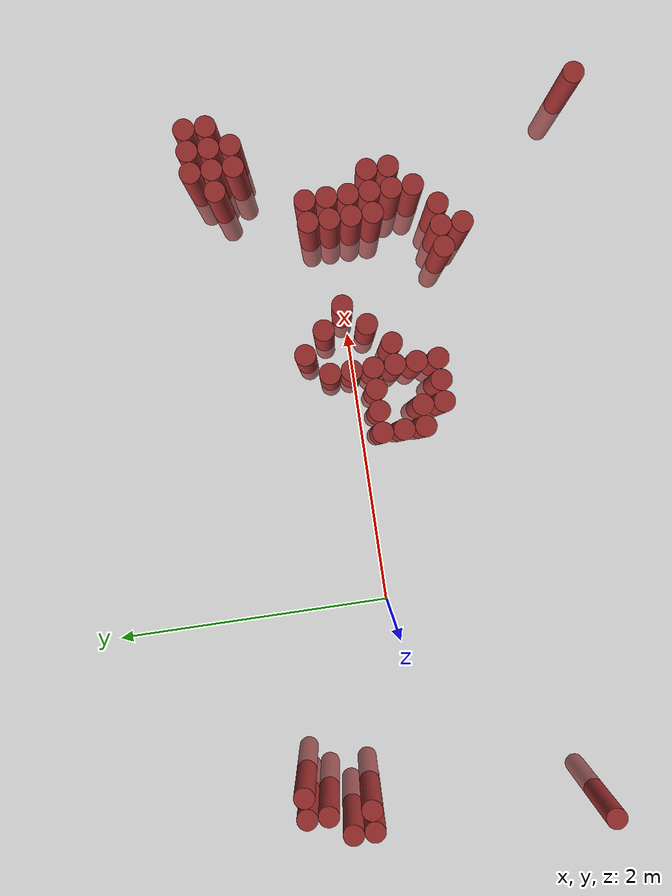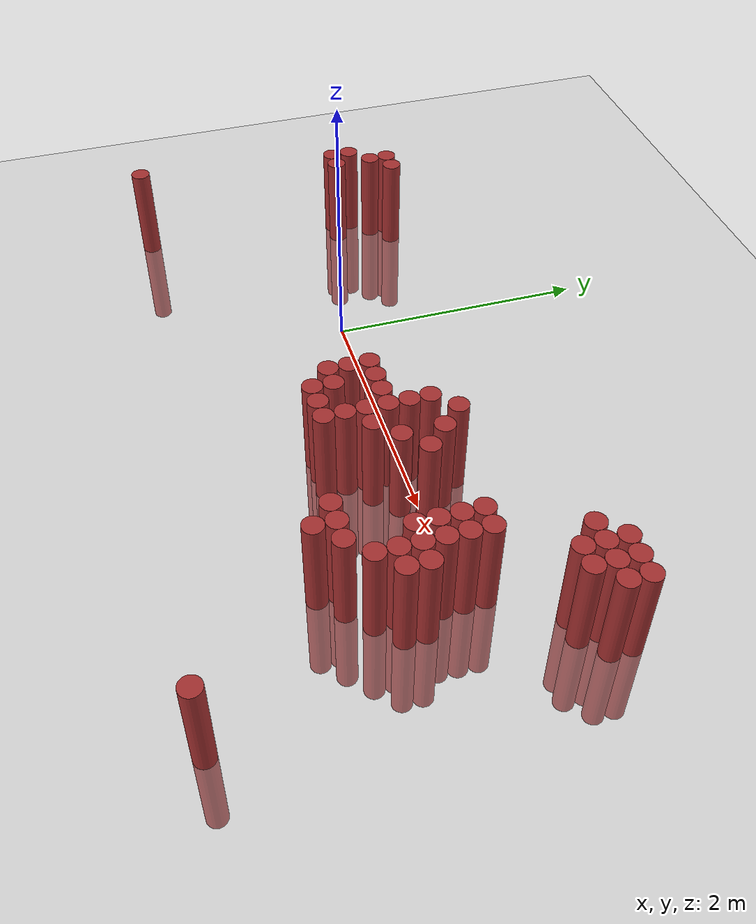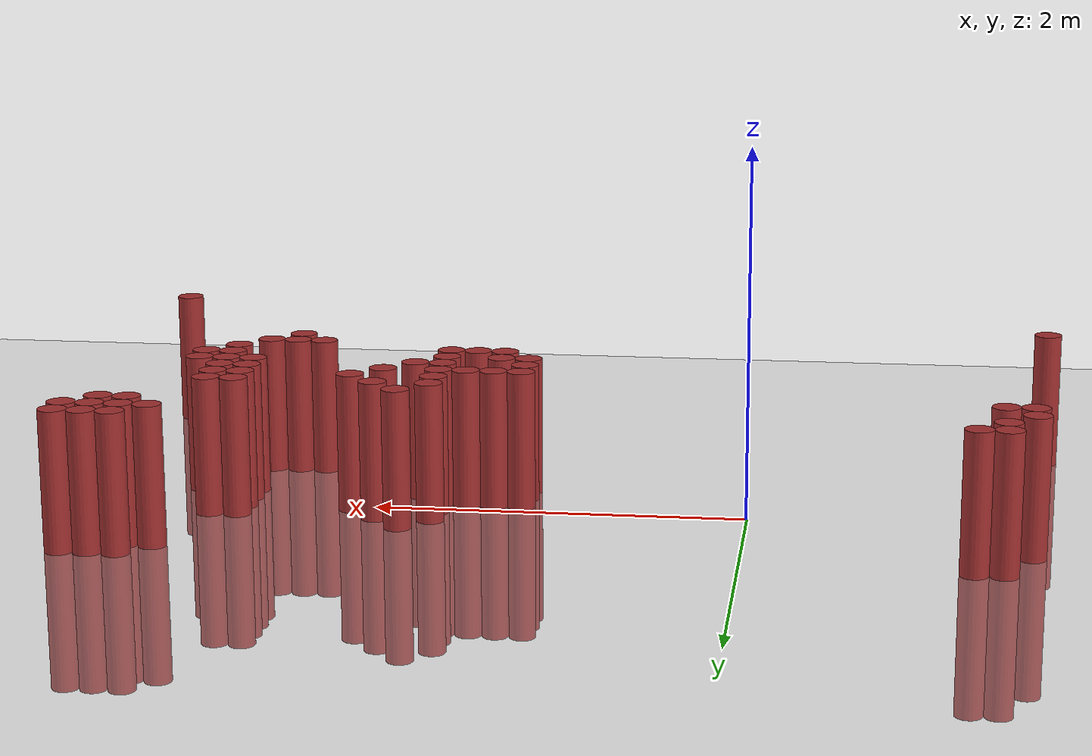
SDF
<sdf version="1.6">
 <world name="default">
  <model name="ground_plane">
   <static>1</static>
   <link name="link">
    <collision name="collision">
     <geometry><plane><normal>0 0 1</normal><size>100 100</size></plane></geometry>
     <surface><friction><ode><mu>100</mu><mu2>50</mu2></ode></friction></surface>
    </collision>
    <visual name="visual">
     <cast_shadows>0</cast_shadows>
     <geometry><plane><normal>0 0 1</normal><size>100 100</size></plane></geometry>
     <material>
      <script><uri>file://media/materials/scripts/gazebo.material</uri><name>Gazebo/Grey</name></script>
     </material>
    </visual>
   </link>
  </model>
  <model name="unit_cylinder_320">
   <static>1</static>
   <pose>-1.625000 -1.325000 0.000000 0.000000 0.000000 0.000000</pose>
   <link name="link">
    <inertial>
     <mass>1</mass>
     <inertia><ixx>0.145833</ixx><ixy>0</ixy><ixz>0</ixz><iyy>0.145833</iyy><iyz>0</iyz><izz>0.125</izz></inertia>
    </inertial>
    <collision name="collision">
     <geometry><cylinder><radius>0.075000</radius><length>1.5</length></cylinder></geometry>
    </collision>
    <visual name="visual">
     <geometry><cylinder><radius>0.075000</radius><length>1.5</length></cylinder></geometry>
     <material>
      <ambient>0.648000 0.192000 0.192000 1</ambient>
      <diffuse>0.648000 0.192000 0.192000 1</diffuse>
     </material>
     <material>
      <script><name>Gazebo/Grey</name><uri>file://media/materials/scripts/gazebo.material</uri></script>
     </material>
    </visual>
   </link>
  </model>
  <model name="unit_cylinder_321">
   <static>1</static>
   <pose>-1.475000 0.325000 0.000000 0.000000 0.000000 0.000000</pose>
   <link name="link">
    <inertial>
     <mass>1</mass>
     <inertia><ixx>0.145833</ixx><ixy>0</ixy><ixz>0</ixz><iyy>0.145833</iyy><iyz>0</iyz><izz>0.125</izz></inertia>
    </inertial>
    <collision name="collision">
     <geometry><cylinder><radius>0.075000</radius><length>1.5</length></cylinder></geometry>
    </collision>
    <visual name="visual">
     <geometry><cylinder><radius>0.075000</radius><length>1.5</length></cylinder></geometry>
     <material>
      <ambient>0.648000 0.192000 0.192000 1</ambient>
      <diffuse>0.648000 0.192000 0.192000 1</diffuse>
     </material>
     <material>
      <script><name>Gazebo/Grey</name><uri>file://media/materials/scripts/gazebo.material</uri></script>
     </material>
    </visual>
   </link>
  </model>
  <model name="unit_cylinder_322">
   <static>1</static>
   <pose>-1.475000 0.475000 0.000000 0.000000 0.000000 0.000000</pose>
   <link name="link">
    <inertial>
     <mass>1</mass>
     <inertia><ixx>0.145833</ixx><ixy>0</ixy><ixz>0</ixz><iyy>0.145833</iyy><iyz>0</iyz><izz>0.125</izz></inertia>
    </inertial>
    <collision name="collision">
     <geometry><cylinder><radius>0.075000</radius><length>1.5</length></cylinder></geometry>
    </collision>
    <visual name="visual">
     <geometry><cylinder><radius>0.075000</radius><length>1.5</length></cylinder></geometry>
     <material>
      <ambient>0.648000 0.192000 0.192000 1</ambient>
      <diffuse>0.648000 0.192000 0.192000 1</diffuse>
     </material>
     <material>
      <script><name>Gazebo/Grey</name><uri>file://media/materials/scripts/gazebo.material</uri></script>
     </material>
    </visual>
   </link>
  </model>
  <model name="unit_cylinder_324">
   <static>1</static>
   <pose>-1.325000 0.325000 0.000000 0.000000 0.000000 0.000000</pose>
   <link name="link">
    <inertial>
     <mass>1</mass>
     <inertia><ixx>0.145833</ixx><ixy>0</ixy><ixz>0</ixz><iyy>0.145833</iyy><iyz>0</iyz><izz>0.125</izz></inertia>
    </inertial>
    <collision name="collision">
     <geometry><cylinder><radius>0.075000</radius><length>1.5</length></cylinder></geometry>
    </collision>
    <visual name="visual">
     <geometry><cylinder><radius>0.075000</radius><length>1.5</length></cylinder></geometry>
     <material>
      <ambient>0.648000 0.192000 0.192000 1</ambient>
      <diffuse>0.648000 0.192000 0.192000 1</diffuse>
     </material>
     <material>
      <script><name>Gazebo/Grey</name><uri>file://media/materials/scripts/gazebo.material</uri></script>
     </material>
    </visual>
   </link>
  </model>
  <model name="unit_cylinder_325">
   <static>1</static>
   <pose>-1.325000 0.625000 0.000000 0.000000 0.000000 0.000000</pose>
   <link name="link">
    <inertial>
     <mass>1</mass>
     <inertia><ixx>0.145833</ixx><ixy>0</ixy><ixz>0</ixz><iyy>0.145833</iyy><iyz>0</iyz><izz>0.125</izz></inertia>
    </inertial>
    <collision name="collision">
     <geometry><cylinder><radius>0.075000</radius><length>1.5</length></cylinder></geometry>
    </collision>
    <visual name="visual">
     <geometry><cylinder><radius>0.075000</radius><length>1.5</length></cylinder></geometry>
     <material>
      <ambient>0.648000 0.192000 0.192000 1</ambient>
      <diffuse>0.648000 0.192000 0.192000 1</diffuse>
     </material>
     <material>
      <script><name>Gazebo/Grey</name><uri>file://media/materials/scripts/gazebo.material</uri></script>
     </material>
    </visual>
   </link>
  </model>
  <model name="unit_cylinder_326">
   <static>1</static>
   <pose>-1.325000 0.775000 0.000000 0.000000 0.000000 0.000000</pose>
   <link name="link">
    <inertial>
     <mass>1</mass>
     <inertia><ixx>0.145833</ixx><ixy>0</ixy><ixz>0</ixz><iyy>0.145833</iyy><iyz>0</iyz><izz>0.125</izz></inertia>
    </inertial>
    <collision name="collision">
     <geometry><cylinder><radius>0.075000</radius><length>1.5</length></cylinder></geometry>
    </collision>
    <visual name="visual">
     <geometry><cylinder><radius>0.075000</radius><length>1.5</length></cylinder></geometry>
     <material>
      <ambient>0.648000 0.192000 0.192000 1</ambient>
      <diffuse>0.648000 0.192000 0.192000 1</diffuse>
     </material>
     <material>
      <script><name>Gazebo/Grey</name><uri>file://media/materials/scripts/gazebo.material</uri></script>
     </material>
    </visual>
   </link>
  </model>
  <model name="unit_cylinder_329">
   <static>1</static>
   <pose>-1.175000 0.775000 0.000000 0.000000 0.000000 0.000000</pose>
   <link name="link">
    <inertial>
     <mass>1</mass>
     <inertia><ixx>0.145833</ixx><ixy>0</ixy><ixz>0</ixz><iyy>0.145833</iyy><iyz>0</iyz><izz>0.125</izz></inertia>
    </inertial>
    <collision name="collision">
     <geometry><cylinder><radius>0.075000</radius><length>1.5</length></cylinder></geometry>
    </collision>
    <visual name="visual">
     <geometry><cylinder><radius>0.075000</radius><length>1.5</length></cylinder></geometry>
     <material>
      <ambient>0.648000 0.192000 0.192000 1</ambient>
      <diffuse>0.648000 0.192000 0.192000 1</diffuse>
     </material>
     <material>
      <script><name>Gazebo/Grey</name><uri>file://media/materials/scripts/gazebo.material</uri></script>
     </material>
    </visual>
   </link>
  </model>
  <model name="unit_cylinder_367">
   <static>1</static>
   <pose>1.225000 -0.425000 0.000000 0.000000 0.000000 0.000000</pose>
   <link name="link">
    <inertial>
     <mass>1</mass>
     <inertia><ixx>0.145833</ixx><ixy>0</ixy><ixz>0</ixz><iyy>0.145833</iyy><iyz>0</iyz><izz>0.125</izz></inertia>
    </inertial>
    <collision name="collision">
     <geometry><cylinder><radius>0.075000</radius><length>1.5</length></cylinder></geometry>
    </collision>
    <visual name="visual">
     <geometry><cylinder><radius>0.075000</radius><length>1.5</length></cylinder></geometry>
     <material>
      <ambient>0.648000 0.192000 0.192000 1</ambient>
      <diffuse>0.648000 0.192000 0.192000 1</diffuse>
     </material>
     <material>
      <script><name>Gazebo/Grey</name><uri>file://media/materials/scripts/gazebo.material</uri></script>
     </material>
    </visual>
   </link>
  </model>
  <model name="unit_cylinder_368">
   <static>1</static>
   <pose>1.225000 -0.275000 0.000000 0.000000 0.000000 0.000000</pose>
   <link name="link">
    <inertial>
     <mass>1</mass>
     <inertia><ixx>0.145833</ixx><ixy>0</ixy><ixz>0</ixz><iyy>0.145833</iyy><iyz>0</iyz><izz>0.125</izz></inertia>
    </inertial>
    <collision name="collision">
     <geometry><cylinder><radius>0.075000</radius><length>1.5</length></cylinder></geometry>
    </collision>
    <visual name="visual">
     <geometry><cylinder><radius>0.075000</radius><length>1.5</length></cylinder></geometry>
     <material>
      <ambient>0.648000 0.192000 0.192000 1</ambient>
      <diffuse>0.648000 0.192000 0.192000 1</diffuse>
     </material>
     <material>
      <script><name>Gazebo/Grey</name><uri>file://media/materials/scripts/gazebo.material</uri></script>
     </material>
    </visual>
   </link>
  </model>
  <model name="unit_cylinder_369">
   <static>1</static>
   <pose>1.225000 -0.125000 0.000000 0.000000 0.000000 0.000000</pose>
   <link name="link">
    <inertial>
     <mass>1</mass>
     <inertia><ixx>0.145833</ixx><ixy>0</ixy><ixz>0</ixz><iyy>0.145833</iyy><iyz>0</iyz><izz>0.125</izz></inertia>
    </inertial>
    <collision name="collision">
     <geometry><cylinder><radius>0.075000</radius><length>1.5</length></cylinder></geometry>
    </collision>
    <visual name="visual">
     <geometry><cylinder><radius>0.075000</radius><length>1.5</length></cylinder></geometry>
     <material>
      <ambient>0.648000 0.192000 0.192000 1</ambient>
      <diffuse>0.648000 0.192000 0.192000 1</diffuse>
     </material>
     <material>
      <script><name>Gazebo/Grey</name><uri>file://media/materials/scripts/gazebo.material</uri></script>
     </material>
    </visual>
   </link>
  </model>
  <model name="unit_cylinder_370">
   <static>1</static>
   <pose>1.375000 -0.575000 0.000000 0.000000 0.000000 0.000000</pose>
   <link name="link">
    <inertial>
     <mass>1</mass>
     <inertia><ixx>0.145833</ixx><ixy>0</ixy><ixz>0</ixz><iyy>0.145833</iyy><iyz>0</iyz><izz>0.125</izz></inertia>
    </inertial>
    <collision name="collision">
     <geometry><cylinder><radius>0.075000</radius><length>1.5</length></cylinder></geometry>
    </collision>
    <visual name="visual">
     <geometry><cylinder><radius>0.075000</radius><length>1.5</length></cylinder></geometry>
     <material>
      <ambient>0.648000 0.192000 0.192000 1</ambient>
      <diffuse>0.648000 0.192000 0.192000 1</diffuse>
     </material>
     <material>
      <script><name>Gazebo/Grey</name><uri>file://media/materials/scripts/gazebo.material</uri></script>
     </material>
    </visual>
   </link>
  </model>
  <model name="unit_cylinder_371">
   <static>1</static>
   <pose>1.375000 -0.425000 0.000000 0.000000 0.000000 0.000000</pose>
   <link name="link">
    <inertial>
     <mass>1</mass>
     <inertia><ixx>0.145833</ixx><ixy>0</ixy><ixz>0</ixz><iyy>0.145833</iyy><iyz>0</iyz><izz>0.125</izz></inertia>
    </inertial>
    <collision name="collision">
     <geometry><cylinder><radius>0.075000</radius><length>1.5</length></cylinder></geometry>
    </collision>
    <visual name="visual">
     <geometry><cylinder><radius>0.075000</radius><length>1.5</length></cylinder></geometry>
     <material>
      <ambient>0.648000 0.192000 0.192000 1</ambient>
      <diffuse>0.648000 0.192000 0.192000 1</diffuse>
     </material>
     <material>
      <script><name>Gazebo/Grey</name><uri>file://media/materials/scripts/gazebo.material</uri></script>
     </material>
    </visual>
   </link>
  </model>
  <model name="unit_cylinder_372">
   <static>1</static>
   <pose>1.375000 -0.125000 0.000000 0.000000 0.000000 0.000000</pose>
   <link name="link">
    <inertial>
     <mass>1</mass>
     <inertia><ixx>0.145833</ixx><ixy>0</ixy><ixz>0</ixz><iyy>0.145833</iyy><iyz>0</iyz><izz>0.125</izz></inertia>
    </inertial>
    <collision name="collision">
     <geometry><cylinder><radius>0.075000</radius><length>1.5</length></cylinder></geometry>
    </collision>
    <visual name="visual">
     <geometry><cylinder><radius>0.075000</radius><length>1.5</length></cylinder></geometry>
     <material>
      <ambient>0.648000 0.192000 0.192000 1</ambient>
      <diffuse>0.648000 0.192000 0.192000 1</diffuse>
     </material>
     <material>
      <script><name>Gazebo/Grey</name><uri>file://media/materials/scripts/gazebo.material</uri></script>
     </material>
    </visual>
   </link>
  </model>
  <model name="unit_cylinder_373">
   <static>1</static>
   <pose>1.525000 -0.575000 0.000000 0.000000 0.000000 0.000000</pose>
   <link name="link">
    <inertial>
     <mass>1</mass>
     <inertia><ixx>0.145833</ixx><ixy>0</ixy><ixz>0</ixz><iyy>0.145833</iyy><iyz>0</iyz><izz>0.125</izz></inertia>
    </inertial>
    <collision name="collision">
     <geometry><cylinder><radius>0.075000</radius><length>1.5</length></cylinder></geometry>
    </collision>
    <visual name="visual">
     <geometry><cylinder><radius>0.075000</radius><length>1.5</length></cylinder></geometry>
     <material>
      <ambient>0.648000 0.192000 0.192000 1</ambient>
      <diffuse>0.648000 0.192000 0.192000 1</diffuse>
     </material>
     <material>
      <script><name>Gazebo/Grey</name><uri>file://media/materials/scripts/gazebo.material</uri></script>
     </material>
    </visual>
   </link>
  </model>
  <model name="unit_cylinder_374">
   <static>1</static>
   <pose>1.525000 -0.125000 0.000000 0.000000 0.000000 0.000000</pose>
   <link name="link">
    <inertial>
     <mass>1</mass>
     <inertia><ixx>0.145833</ixx><ixy>0</ixy><ixz>0</ixz><iyy>0.145833</iyy><iyz>0</iyz><izz>0.125</izz></inertia>
    </inertial>
    <collision name="collision">
     <geometry><cylinder><radius>0.075000</radius><length>1.5</length></cylinder></geometry>
    </collision>
    <visual name="visual">
     <geometry><cylinder><radius>0.075000</radius><length>1.5</length></cylinder></geometry>
     <material>
      <ambient>0.648000 0.192000 0.192000 1</ambient>
      <diffuse>0.648000 0.192000 0.192000 1</diffuse>
     </material>
     <material>
      <script><name>Gazebo/Grey</name><uri>file://media/materials/scripts/gazebo.material</uri></script>
     </material>
    </visual>
   </link>
  </model>
  <model name="unit_cylinder_375">
   <static>1</static>
   <pose>1.675000 -0.575000 0.000000 0.000000 0.000000 0.000000</pose>
   <link name="link">
    <inertial>
     <mass>1</mass>
     <inertia><ixx>0.145833</ixx><ixy>0</ixy><ixz>0</ixz><iyy>0.145833</iyy><iyz>0</iyz><izz>0.125</izz></inertia>
    </inertial>
    <collision name="collision">
     <geometry><cylinder><radius>0.075000</radius><length>1.5</length></cylinder></geometry>
    </collision>
    <visual name="visual">
     <geometry><cylinder><radius>0.075000</radius><length>1.5</length></cylinder></geometry>
     <material>
      <ambient>0.648000 0.192000 0.192000 1</ambient>
      <diffuse>0.648000 0.192000 0.192000 1</diffuse>
     </material>
     <material>
      <script><name>Gazebo/Grey</name><uri>file://media/materials/scripts/gazebo.material</uri></script>
     </material>
    </visual>
   </link>
  </model>
  <model name="unit_cylinder_376">
   <static>1</static>
   <pose>1.675000 -0.425000 0.000000 0.000000 0.000000 0.000000</pose>
   <link name="link">
    <inertial>
     <mass>1</mass>
     <inertia><ixx>0.145833</ixx><ixy>0</ixy><ixz>0</ixz><iyy>0.145833</iyy><iyz>0</iyz><izz>0.125</izz></inertia>
    </inertial>
    <collision name="collision">
     <geometry><cylinder><radius>0.075000</radius><length>1.5</length></cylinder></geometry>
    </collision>
    <visual name="visual">
     <geometry><cylinder><radius>0.075000</radius><length>1.5</length></cylinder></geometry>
     <material>
      <ambient>0.648000 0.192000 0.192000 1</ambient>
      <diffuse>0.648000 0.192000 0.192000 1</diffuse>
     </material>
     <material>
      <script><name>Gazebo/Grey</name><uri>file://media/materials/scripts/gazebo.material</uri></script>
     </material>
    </visual>
   </link>
  </model>
  <model name="unit_cylinder_377">
   <static>1</static>
   <pose>1.675000 -0.275000 0.000000 0.000000 0.000000 0.000000</pose>
   <link name="link">
    <inertial>
     <mass>1</mass>
     <inertia><ixx>0.145833</ixx><ixy>0</ixy><ixz>0</ixz><iyy>0.145833</iyy><iyz>0</iyz><izz>0.125</izz></inertia>
    </inertial>
    <collision name="collision">
     <geometry><cylinder><radius>0.075000</radius><length>1.5</length></cylinder></geometry>
    </collision>
    <visual name="visual">
     <geometry><cylinder><radius>0.075000</radius><length>1.5</length></cylinder></geometry>
     <material>
      <ambient>0.648000 0.192000 0.192000 1</ambient>
      <diffuse>0.648000 0.192000 0.192000 1</diffuse>
     </material>
     <material>
      <script><name>Gazebo/Grey</name><uri>file://media/materials/scripts/gazebo.material</uri></script>
     </material>
    </visual>
   </link>
  </model>
  <model name="unit_cylinder_378">
   <static>1</static>
   <pose>1.675000 -0.125000 0.000000 0.000000 0.000000 0.000000</pose>
   <link name="link">
    <inertial>
     <mass>1</mass>
     <inertia><ixx>0.145833</ixx><ixy>0</ixy><ixz>0</ixz><iyy>0.145833</iyy><iyz>0</iyz><izz>0.125</izz></inertia>
    </inertial>
    <collision name="collision">
     <geometry><cylinder><radius>0.075000</radius><length>1.5</length></cylinder></geometry>
    </collision>
    <visual name="visual">
     <geometry><cylinder><radius>0.075000</radius><length>1.5</length></cylinder></geometry>
     <material>
      <ambient>0.648000 0.192000 0.192000 1</ambient>
      <diffuse>0.648000 0.192000 0.192000 1</diffuse>
     </material>
     <material>
      <script><name>Gazebo/Grey</name><uri>file://media/materials/scripts/gazebo.material</uri></script>
     </material>
    </visual>
   </link>
  </model>
  <model name="unit_cylinder_379">
   <static>1</static>
   <pose>1.675000 0.025000 0.000000 0.000000 0.000000 0.000000</pose>
   <link name="link">
    <inertial>
     <mass>1</mass>
     <inertia><ixx>0.145833</ixx><ixy>0</ixy><ixz>0</ixz><iyy>0.145833</iyy><iyz>0</iyz><izz>0.125</izz></inertia>
    </inertial>
    <collision name="collision">
     <geometry><cylinder><radius>0.075000</radius><length>1.5</length></cylinder></geometry>
    </collision>
    <visual name="visual">
     <geometry><cylinder><radius>0.075000</radius><length>1.5</length></cylinder></geometry>
     <material>
      <ambient>0.648000 0.192000 0.192000 1</ambient>
      <diffuse>0.648000 0.192000 0.192000 1</diffuse>
     </material>
     <material>
      <script><name>Gazebo/Grey</name><uri>file://media/materials/scripts/gazebo.material</uri></script>
     </material>
    </visual>
   </link>
  </model>
  <model name="unit_cylinder_380">
   <static>1</static>
   <pose>1.675000 0.175000 0.000000 0.000000 0.000000 0.000000</pose>
   <link name="link">
    <inertial>
     <mass>1</mass>
     <inertia><ixx>0.145833</ixx><ixy>0</ixy><ixz>0</ixz><iyy>0.145833</iyy><iyz>0</iyz><izz>0.125</izz></inertia>
    </inertial>
    <collision name="collision">
     <geometry><cylinder><radius>0.075000</radius><length>1.5</length></cylinder></geometry>
    </collision>
    <visual name="visual">
     <geometry><cylinder><radius>0.075000</radius><length>1.5</length></cylinder></geometry>
     <material>
      <ambient>0.648000 0.192000 0.192000 1</ambient>
      <diffuse>0.648000 0.192000 0.192000 1</diffuse>
     </material>
     <material>
      <script><name>Gazebo/Grey</name><uri>file://media/materials/scripts/gazebo.material</uri></script>
     </material>
    </visual>
   </link>
  </model>
  <model name="unit_cylinder_384">
   <static>1</static>
   <pose>1.825000 -0.275000 0.000000 0.000000 0.000000 0.000000</pose>
   <link name="link">
    <inertial>
     <mass>1</mass>
     <inertia><ixx>0.145833</ixx><ixy>0</ixy><ixz>0</ixz><iyy>0.145833</iyy><iyz>0</iyz><izz>0.125</izz></inertia>
    </inertial>
    <collision name="collision">
     <geometry><cylinder><radius>0.075000</radius><length>1.5</length></cylinder></geometry>
    </collision>
    <visual name="visual">
     <geometry><cylinder><radius>0.075000</radius><length>1.5</length></cylinder></geometry>
     <material>
      <ambient>0.648000 0.192000 0.192000 1</ambient>
      <diffuse>0.648000 0.192000 0.192000 1</diffuse>
     </material>
     <material>
      <script><name>Gazebo/Grey</name><uri>file://media/materials/scripts/gazebo.material</uri></script>
     </material>
    </visual>
   </link>
  </model>
  <model name="unit_cylinder_385">
   <static>1</static>
   <pose>1.825000 0.325000 0.000000 0.000000 0.000000 0.000000</pose>
   <link name="link">
    <inertial>
     <mass>1</mass>
     <inertia><ixx>0.145833</ixx><ixy>0</ixy><ixz>0</ixz><iyy>0.145833</iyy><iyz>0</iyz><izz>0.125</izz></inertia>
    </inertial>
    <collision name="collision">
     <geometry><cylinder><radius>0.075000</radius><length>1.5</length></cylinder></geometry>
    </collision>
    <visual name="visual">
     <geometry><cylinder><radius>0.075000</radius><length>1.5</length></cylinder></geometry>
     <material>
      <ambient>0.648000 0.192000 0.192000 1</ambient>
      <diffuse>0.648000 0.192000 0.192000 1</diffuse>
     </material>
     <material>
      <script><name>Gazebo/Grey</name><uri>file://media/materials/scripts/gazebo.material</uri></script>
     </material>
    </visual>
   </link>
  </model>
  <model name="unit_cylinder_393">
   <static>1</static>
   <pose>1.975000 -0.125000 0.000000 0.000000 0.000000 0.000000</pose>
   <link name="link">
    <inertial>
     <mass>1</mass>
     <inertia><ixx>0.145833</ixx><ixy>0</ixy><ixz>0</ixz><iyy>0.145833</iyy><iyz>0</iyz><izz>0.125</izz></inertia>
    </inertial>
    <collision name="collision">
     <geometry><cylinder><radius>0.075000</radius><length>1.5</length></cylinder></geometry>
    </collision>
    <visual name="visual">
     <geometry><cylinder><radius>0.075000</radius><length>1.5</length></cylinder></geometry>
     <material>
      <ambient>0.648000 0.192000 0.192000 1</ambient>
      <diffuse>0.648000 0.192000 0.192000 1</diffuse>
     </material>
     <material>
      <script><name>Gazebo/Grey</name><uri>file://media/materials/scripts/gazebo.material</uri></script>
     </material>
    </visual>
   </link>
  </model>
  <model name="unit_cylinder_394">
   <static>1</static>
   <pose>1.975000 0.175000 0.000000 0.000000 0.000000 0.000000</pose>
   <link name="link">
    <inertial>
     <mass>1</mass>
     <inertia><ixx>0.145833</ixx><ixy>0</ixy><ixz>0</ixz><iyy>0.145833</iyy><iyz>0</iyz><izz>0.125</izz></inertia>
    </inertial>
    <collision name="collision">
     <geometry><cylinder><radius>0.075000</radius><length>1.5</length></cylinder></geometry>
    </collision>
    <visual name="visual">
     <geometry><cylinder><radius>0.075000</radius><length>1.5</length></cylinder></geometry>
     <material>
      <ambient>0.648000 0.192000 0.192000 1</ambient>
      <diffuse>0.648000 0.192000 0.192000 1</diffuse>
     </material>
     <material>
      <script><name>Gazebo/Grey</name><uri>file://media/materials/scripts/gazebo.material</uri></script>
     </material>
    </visual>
   </link>
  </model>
  <model name="unit_cylinder_400">
   <static>1</static>
   <pose>2.125000 0.025000 0.000000 0.000000 0.000000 0.000000</pose>
   <link name="link">
    <inertial>
     <mass>1</mass>
     <inertia><ixx>0.145833</ixx><ixy>0</ixy><ixz>0</ixz><iyy>0.145833</iyy><iyz>0</iyz><izz>0.125</izz></inertia>
    </inertial>
    <collision name="collision">
     <geometry><cylinder><radius>0.075000</radius><length>1.5</length></cylinder></geometry>
    </collision>
    <visual name="visual">
     <geometry><cylinder><radius>0.075000</radius><length>1.5</length></cylinder></geometry>
     <material>
      <ambient>0.648000 0.192000 0.192000 1</ambient>
      <diffuse>0.648000 0.192000 0.192000 1</diffuse>
     </material>
     <material>
      <script><name>Gazebo/Grey</name><uri>file://media/materials/scripts/gazebo.material</uri></script>
     </material>
    </visual>
   </link>
  </model>
  <model name="unit_cylinder_410">
   <static>1</static>
   <pose>2.425000 -0.725000 0.000000 0.000000 0.000000 0.000000</pose>
   <link name="link">
    <inertial>
     <mass>1</mass>
     <inertia><ixx>0.145833</ixx><ixy>0</ixy><ixz>0</ixz><iyy>0.145833</iyy><iyz>0</iyz><izz>0.125</izz></inertia>
    </inertial>
    <collision name="collision">
     <geometry><cylinder><radius>0.075000</radius><length>1.5</length></cylinder></geometry>
    </collision>
    <visual name="visual">
     <geometry><cylinder><radius>0.075000</radius><length>1.5</length></cylinder></geometry>
     <material>
      <ambient>0.648000 0.192000 0.192000 1</ambient>
      <diffuse>0.648000 0.192000 0.192000 1</diffuse>
     </material>
     <material>
      <script><name>Gazebo/Grey</name><uri>file://media/materials/scripts/gazebo.material</uri></script>
     </material>
    </visual>
   </link>
  </model>
  <model name="unit_cylinder_415">
   <static>1</static>
   <pose>2.575000 -0.875000 0.000000 0.000000 0.000000 0.000000</pose>
   <link name="link">
    <inertial>
     <mass>1</mass>
     <inertia><ixx>0.145833</ixx><ixy>0</ixy><ixz>0</ixz><iyy>0.145833</iyy><iyz>0</iyz><izz>0.125</izz></inertia>
    </inertial>
    <collision name="collision">
     <geometry><cylinder><radius>0.075000</radius><length>1.5</length></cylinder></geometry>
    </collision>
    <visual name="visual">
     <geometry><cylinder><radius>0.075000</radius><length>1.5</length></cylinder></geometry>
     <material>
      <ambient>0.648000 0.192000 0.192000 1</ambient>
      <diffuse>0.648000 0.192000 0.192000 1</diffuse>
     </material>
     <material>
      <script><name>Gazebo/Grey</name><uri>file://media/materials/scripts/gazebo.material</uri></script>
     </material>
    </visual>
   </link>
  </model>
  <model name="unit_cylinder_416">
   <static>1</static>
   <pose>2.575000 -0.725000 0.000000 0.000000 0.000000 0.000000</pose>
   <link name="link">
    <inertial>
     <mass>1</mass>
     <inertia><ixx>0.145833</ixx><ixy>0</ixy><ixz>0</ixz><iyy>0.145833</iyy><iyz>0</iyz><izz>0.125</izz></inertia>
    </inertial>
    <collision name="collision">
     <geometry><cylinder><radius>0.075000</radius><length>1.5</length></cylinder></geometry>
    </collision>
    <visual name="visual">
     <geometry><cylinder><radius>0.075000</radius><length>1.5</length></cylinder></geometry>
     <material>
      <ambient>0.648000 0.192000 0.192000 1</ambient>
      <diffuse>0.648000 0.192000 0.192000 1</diffuse>
     </material>
     <material>
      <script><name>Gazebo/Grey</name><uri>file://media/materials/scripts/gazebo.material</uri></script>
     </material>
    </visual>
   </link>
  </model>
  <model name="unit_cylinder_418">
   <static>1</static>
   <pose>2.725000 -0.725000 0.000000 0.000000 0.000000 0.000000</pose>
   <link name="link">
    <inertial>
     <mass>1</mass>
     <inertia><ixx>0.145833</ixx><ixy>0</ixy><ixz>0</ixz><iyy>0.145833</iyy><iyz>0</iyz><izz>0.125</izz></inertia>
    </inertial>
    <collision name="collision">
     <geometry><cylinder><radius>0.075000</radius><length>1.5</length></cylinder></geometry>
    </collision>
    <visual name="visual">
     <geometry><cylinder><radius>0.075000</radius><length>1.5</length></cylinder></geometry>
     <material>
      <ambient>0.648000 0.192000 0.192000 1</ambient>
      <diffuse>0.648000 0.192000 0.192000 1</diffuse>
     </material>
     <material>
      <script><name>Gazebo/Grey</name><uri>file://media/materials/scripts/gazebo.material</uri></script>
     </material>
    </visual>
   </link>
  </model>
  <model name="unit_cylinder_419">
   <static>1</static>
   <pose>2.725000 -0.275000 0.000000 0.000000 0.000000 0.000000</pose>
   <link name="link">
    <inertial>
     <mass>1</mass>
     <inertia><ixx>0.145833</ixx><ixy>0</ixy><ixz>0</ixz><iyy>0.145833</iyy><iyz>0</iyz><izz>0.125</izz></inertia>
    </inertial>
    <collision name="collision">
     <geometry><cylinder><radius>0.075000</radius><length>1.5</length></cylinder></geometry>
    </collision>
    <visual name="visual">
     <geometry><cylinder><radius>0.075000</radius><length>1.5</length></cylinder></geometry>
     <material>
      <ambient>0.648000 0.192000 0.192000 1</ambient>
      <diffuse>0.648000 0.192000 0.192000 1</diffuse>
     </material>
     <material>
      <script><name>Gazebo/Grey</name><uri>file://media/materials/scripts/gazebo.material</uri></script>
     </material>
    </visual>
   </link>
  </model>
  <model name="unit_cylinder_420">
   <static>1</static>
   <pose>2.725000 -0.125000 0.000000 0.000000 0.000000 0.000000</pose>
   <link name="link">
    <inertial>
     <mass>1</mass>
     <inertia><ixx>0.145833</ixx><ixy>0</ixy><ixz>0</ixz><iyy>0.145833</iyy><iyz>0</iyz><izz>0.125</izz></inertia>
    </inertial>
    <collision name="collision">
     <geometry><cylinder><radius>0.075000</radius><length>1.5</length></cylinder></geometry>
    </collision>
    <visual name="visual">
     <geometry><cylinder><radius>0.075000</radius><length>1.5</length></cylinder></geometry>
     <material>
      <ambient>0.648000 0.192000 0.192000 1</ambient>
      <diffuse>0.648000 0.192000 0.192000 1</diffuse>
     </material>
     <material>
      <script><name>Gazebo/Grey</name><uri>file://media/materials/scripts/gazebo.material</uri></script>
     </material>
    </visual>
   </link>
  </model>
  <model name="unit_cylinder_421">
   <static>1</static>
   <pose>2.725000 0.025000 0.000000 0.000000 0.000000 0.000000</pose>
   <link name="link">
    <inertial>
     <mass>1</mass>
     <inertia><ixx>0.145833</ixx><ixy>0</ixy><ixz>0</ixz><iyy>0.145833</iyy><iyz>0</iyz><izz>0.125</izz></inertia>
    </inertial>
    <collision name="collision">
     <geometry><cylinder><radius>0.075000</radius><length>1.5</length></cylinder></geometry>
    </collision>
    <visual name="visual">
     <geometry><cylinder><radius>0.075000</radius><length>1.5</length></cylinder></geometry>
     <material>
      <ambient>0.648000 0.192000 0.192000 1</ambient>
      <diffuse>0.648000 0.192000 0.192000 1</diffuse>
     </material>
     <material>
      <script><name>Gazebo/Grey</name><uri>file://media/materials/scripts/gazebo.material</uri></script>
     </material>
    </visual>
   </link>
  </model>
  <model name="unit_cylinder_422">
   <static>1</static>
   <pose>2.725000 0.175000 0.000000 0.000000 0.000000 0.000000</pose>
   <link name="link">
    <inertial>
     <mass>1</mass>
     <inertia><ixx>0.145833</ixx><ixy>0</ixy><ixz>0</ixz><iyy>0.145833</iyy><iyz>0</iyz><izz>0.125</izz></inertia>
    </inertial>
    <collision name="collision">
     <geometry><cylinder><radius>0.075000</radius><length>1.5</length></cylinder></geometry>
    </collision>
    <visual name="visual">
     <geometry><cylinder><radius>0.075000</radius><length>1.5</length></cylinder></geometry>
     <material>
      <ambient>0.648000 0.192000 0.192000 1</ambient>
      <diffuse>0.648000 0.192000 0.192000 1</diffuse>
     </material>
     <material>
      <script><name>Gazebo/Grey</name><uri>file://media/materials/scripts/gazebo.material</uri></script>
     </material>
    </visual>
   </link>
  </model>
  <model name="unit_cylinder_423">
   <static>1</static>
   <pose>2.875000 -0.575000 0.000000 0.000000 0.000000 0.000000</pose>
   <link name="link">
    <inertial>
     <mass>1</mass>
     <inertia><ixx>0.145833</ixx><ixy>0</ixy><ixz>0</ixz><iyy>0.145833</iyy><iyz>0</iyz><izz>0.125</izz></inertia>
    </inertial>
    <collision name="collision">
     <geometry><cylinder><radius>0.075000</radius><length>1.5</length></cylinder></geometry>
    </collision>
    <visual name="visual">
     <geometry><cylinder><radius>0.075000</radius><length>1.5</length></cylinder></geometry>
     <material>
      <ambient>0.648000 0.192000 0.192000 1</ambient>
      <diffuse>0.648000 0.192000 0.192000 1</diffuse>
     </material>
     <material>
      <script><name>Gazebo/Grey</name><uri>file://media/materials/scripts/gazebo.material</uri></script>
     </material>
    </visual>
   </link>
  </model>
  <model name="unit_cylinder_424">
   <static>1</static>
   <pose>2.875000 -0.425000 0.000000 0.000000 0.000000 0.000000</pose>
   <link name="link">
    <inertial>
     <mass>1</mass>
     <inertia><ixx>0.145833</ixx><ixy>0</ixy><ixz>0</ixz><iyy>0.145833</iyy><iyz>0</iyz><izz>0.125</izz></inertia>
    </inertial>
    <collision name="collision">
     <geometry><cylinder><radius>0.075000</radius><length>1.5</length></cylinder></geometry>
    </collision>
    <visual name="visual">
     <geometry><cylinder><radius>0.075000</radius><length>1.5</length></cylinder></geometry>
     <material>
      <ambient>0.648000 0.192000 0.192000 1</ambient>
      <diffuse>0.648000 0.192000 0.192000 1</diffuse>
     </material>
     <material>
      <script><name>Gazebo/Grey</name><uri>file://media/materials/scripts/gazebo.material</uri></script>
     </material>
    </visual>
   </link>
  </model>
  <model name="unit_cylinder_425">
   <static>1</static>
   <pose>2.875000 -0.275000 0.000000 0.000000 0.000000 0.000000</pose>
   <link name="link">
    <inertial>
     <mass>1</mass>
     <inertia><ixx>0.145833</ixx><ixy>0</ixy><ixz>0</ixz><iyy>0.145833</iyy><iyz>0</iyz><izz>0.125</izz></inertia>
    </inertial>
    <collision name="collision">
     <geometry><cylinder><radius>0.075000</radius><length>1.5</length></cylinder></geometry>
    </collision>
    <visual name="visual">
     <geometry><cylinder><radius>0.075000</radius><length>1.5</length></cylinder></geometry>
     <material>
      <ambient>0.648000 0.192000 0.192000 1</ambient>
      <diffuse>0.648000 0.192000 0.192000 1</diffuse>
     </material>
     <material>
      <script><name>Gazebo/Grey</name><uri>file://media/materials/scripts/gazebo.material</uri></script>
     </material>
    </visual>
   </link>
  </model>
  <model name="unit_cylinder_426">
   <static>1</static>
   <pose>2.875000 -0.125000 0.000000 0.000000 0.000000 0.000000</pose>
   <link name="link">
    <inertial>
     <mass>1</mass>
     <inertia><ixx>0.145833</ixx><ixy>0</ixy><ixz>0</ixz><iyy>0.145833</iyy><iyz>0</iyz><izz>0.125</izz></inertia>
    </inertial>
    <collision name="collision">
     <geometry><cylinder><radius>0.075000</radius><length>1.5</length></cylinder></geometry>
    </collision>
    <visual name="visual">
     <geometry><cylinder><radius>0.075000</radius><length>1.5</length></cylinder></geometry>
     <material>
      <ambient>0.648000 0.192000 0.192000 1</ambient>
      <diffuse>0.648000 0.192000 0.192000 1</diffuse>
     </material>
     <material>
      <script><name>Gazebo/Grey</name><uri>file://media/materials/scripts/gazebo.material</uri></script>
     </material>
    </visual>
   </link>
  </model>
  <model name="unit_cylinder_427">
   <static>1</static>
   <pose>2.875000 0.025000 0.000000 0.000000 0.000000 0.000000</pose>
   <link name="link">
    <inertial>
     <mass>1</mass>
     <inertia><ixx>0.145833</ixx><ixy>0</ixy><ixz>0</ixz><iyy>0.145833</iyy><iyz>0</iyz><izz>0.125</izz></inertia>
    </inertial>
    <collision name="collision">
     <geometry><cylinder><radius>0.075000</radius><length>1.5</length></cylinder></geometry>
    </collision>
    <visual name="visual">
     <geometry><cylinder><radius>0.075000</radius><length>1.5</length></cylinder></geometry>
     <material>
      <ambient>0.648000 0.192000 0.192000 1</ambient>
      <diffuse>0.648000 0.192000 0.192000 1</diffuse>
     </material>
     <material>
      <script><name>Gazebo/Grey</name><uri>file://media/materials/scripts/gazebo.material</uri></script>
     </material>
    </visual>
   </link>
  </model>
  <model name="unit_cylinder_428">
   <static>1</static>
   <pose>2.875000 0.175000 0.000000 0.000000 0.000000 0.000000</pose>
   <link name="link">
    <inertial>
     <mass>1</mass>
     <inertia><ixx>0.145833</ixx><ixy>0</ixy><ixz>0</ixz><iyy>0.145833</iyy><iyz>0</iyz><izz>0.125</izz></inertia>
    </inertial>
    <collision name="collision">
     <geometry><cylinder><radius>0.075000</radius><length>1.5</length></cylinder></geometry>
    </collision>
    <visual name="visual">
     <geometry><cylinder><radius>0.075000</radius><length>1.5</length></cylinder></geometry>
     <material>
      <ambient>0.648000 0.192000 0.192000 1</ambient>
      <diffuse>0.648000 0.192000 0.192000 1</diffuse>
     </material>
     <material>
      <script><name>Gazebo/Grey</name><uri>file://media/materials/scripts/gazebo.material</uri></script>
     </material>
    </visual>
   </link>
  </model>
  <model name="unit_cylinder_429">
   <static>1</static>
   <pose>3.025000 -0.425000 0.000000 0.000000 0.000000 0.000000</pose>
   <link name="link">
    <inertial>
     <mass>1</mass>
     <inertia><ixx>0.145833</ixx><ixy>0</ixy><ixz>0</ixz><iyy>0.145833</iyy><iyz>0</iyz><izz>0.125</izz></inertia>
    </inertial>
    <collision name="collision">
     <geometry><cylinder><radius>0.075000</radius><length>1.5</length></cylinder></geometry>
    </collision>
    <visual name="visual">
     <geometry><cylinder><radius>0.075000</radius><length>1.5</length></cylinder></geometry>
     <material>
      <ambient>0.648000 0.192000 0.192000 1</ambient>
      <diffuse>0.648000 0.192000 0.192000 1</diffuse>
     </material>
     <material>
      <script><name>Gazebo/Grey</name><uri>file://media/materials/scripts/gazebo.material</uri></script>
     </material>
    </visual>
   </link>
  </model>
  <model name="unit_cylinder_430">
   <static>1</static>
   <pose>3.025000 -0.275000 0.000000 0.000000 0.000000 0.000000</pose>
   <link name="link">
    <inertial>
     <mass>1</mass>
     <inertia><ixx>0.145833</ixx><ixy>0</ixy><ixz>0</ixz><iyy>0.145833</iyy><iyz>0</iyz><izz>0.125</izz></inertia>
    </inertial>
    <collision name="collision">
     <geometry><cylinder><radius>0.075000</radius><length>1.5</length></cylinder></geometry>
    </collision>
    <visual name="visual">
     <geometry><cylinder><radius>0.075000</radius><length>1.5</length></cylinder></geometry>
     <material>
      <ambient>0.648000 0.192000 0.192000 1</ambient>
      <diffuse>0.648000 0.192000 0.192000 1</diffuse>
     </material>
     <material>
      <script><name>Gazebo/Grey</name><uri>file://media/materials/scripts/gazebo.material</uri></script>
     </material>
    </visual>
   </link>
  </model>
  <model name="unit_cylinder_431">
   <static>1</static>
   <pose>3.025000 0.775000 0.000000 0.000000 0.000000 0.000000</pose>
   <link name="link">
    <inertial>
     <mass>1</mass>
     <inertia><ixx>0.145833</ixx><ixy>0</ixy><ixz>0</ixz><iyy>0.145833</iyy><iyz>0</iyz><izz>0.125</izz></inertia>
    </inertial>
    <collision name="collision">
     <geometry><cylinder><radius>0.075000</radius><length>1.5</length></cylinder></geometry>
    </collision>
    <visual name="visual">
     <geometry><cylinder><radius>0.075000</radius><length>1.5</length></cylinder></geometry>
     <material>
      <ambient>0.648000 0.192000 0.192000 1</ambient>
      <diffuse>0.648000 0.192000 0.192000 1</diffuse>
     </material>
     <material>
      <script><name>Gazebo/Grey</name><uri>file://media/materials/scripts/gazebo.material</uri></script>
     </material>
    </visual>
   </link>
  </model>
  <model name="unit_cylinder_432">
   <static>1</static>
   <pose>3.175000 0.625000 0.000000 0.000000 0.000000 0.000000</pose>
   <link name="link">
    <inertial>
     <mass>1</mass>
     <inertia><ixx>0.145833</ixx><ixy>0</ixy><ixz>0</ixz><iyy>0.145833</iyy><iyz>0</iyz><izz>0.125</izz></inertia>
    </inertial>
    <collision name="collision">
     <geometry><cylinder><radius>0.075000</radius><length>1.5</length></cylinder></geometry>
    </collision>
    <visual name="visual">
     <geometry><cylinder><radius>0.075000</radius><length>1.5</length></cylinder></geometry>
     <material>
      <ambient>0.648000 0.192000 0.192000 1</ambient>
      <diffuse>0.648000 0.192000 0.192000 1</diffuse>
     </material>
     <material>
      <script><name>Gazebo/Grey</name><uri>file://media/materials/scripts/gazebo.material</uri></script>
     </material>
    </visual>
   </link>
  </model>
  <model name="unit_cylinder_433">
   <static>1</static>
   <pose>3.175000 0.775000 0.000000 0.000000 0.000000 0.000000</pose>
   <link name="link">
    <inertial>
     <mass>1</mass>
     <inertia><ixx>0.145833</ixx><ixy>0</ixy><ixz>0</ixz><iyy>0.145833</iyy><iyz>0</iyz><izz>0.125</izz></inertia>
    </inertial>
    <collision name="collision">
     <geometry><cylinder><radius>0.075000</radius><length>1.5</length></cylinder></geometry>
    </collision>
    <visual name="visual">
     <geometry><cylinder><radius>0.075000</radius><length>1.5</length></cylinder></geometry>
     <material>
      <ambient>0.648000 0.192000 0.192000 1</ambient>
      <diffuse>0.648000 0.192000 0.192000 1</diffuse>
     </material>
     <material>
      <script><name>Gazebo/Grey</name><uri>file://media/materials/scripts/gazebo.material</uri></script>
     </material>
    </visual>
   </link>
  </model>
  <model name="unit_cylinder_434">
   <static>1</static>
   <pose>3.175000 0.925000 0.000000 0.000000 0.000000 0.000000</pose>
   <link name="link">
    <inertial>
     <mass>1</mass>
     <inertia><ixx>0.145833</ixx><ixy>0</ixy><ixz>0</ixz><iyy>0.145833</iyy><iyz>0</iyz><izz>0.125</izz></inertia>
    </inertial>
    <collision name="collision">
     <geometry><cylinder><radius>0.075000</radius><length>1.5</length></cylinder></geometry>
    </collision>
    <visual name="visual">
     <geometry><cylinder><radius>0.075000</radius><length>1.5</length></cylinder></geometry>
     <material>
      <ambient>0.648000 0.192000 0.192000 1</ambient>
      <diffuse>0.648000 0.192000 0.192000 1</diffuse>
     </material>
     <material>
      <script><name>Gazebo/Grey</name><uri>file://media/materials/scripts/gazebo.material</uri></script>
     </material>
    </visual>
   </link>
  </model>
  <model name="unit_cylinder_435">
   <static>1</static>
   <pose>3.325000 0.625000 0.000000 0.000000 0.000000 0.000000</pose>
   <link name="link">
    <inertial>
     <mass>1</mass>
     <inertia><ixx>0.145833</ixx><ixy>0</ixy><ixz>0</ixz><iyy>0.145833</iyy><iyz>0</iyz><izz>0.125</izz></inertia>
    </inertial>
    <collision name="collision">
     <geometry><cylinder><radius>0.075000</radius><length>1.5</length></cylinder></geometry>
    </collision>
    <visual name="visual">
     <geometry><cylinder><radius>0.075000</radius><length>1.5</length></cylinder></geometry>
     <material>
      <ambient>0.648000 0.192000 0.192000 1</ambient>
      <diffuse>0.648000 0.192000 0.192000 1</diffuse>
     </material>
     <material>
      <script><name>Gazebo/Grey</name><uri>file://media/materials/scripts/gazebo.material</uri></script>
     </material>
    </visual>
   </link>
  </model>
  <model name="unit_cylinder_436">
   <static>1</static>
   <pose>3.325000 0.775000 0.000000 0.000000 0.000000 0.000000</pose>
   <link name="link">
    <inertial>
     <mass>1</mass>
     <inertia><ixx>0.145833</ixx><ixy>0</ixy><ixz>0</ixz><iyy>0.145833</iyy><iyz>0</iyz><izz>0.125</izz></inertia>
    </inertial>
    <collision name="collision">
     <geometry><cylinder><radius>0.075000</radius><length>1.5</length></cylinder></geometry>
    </collision>
    <visual name="visual">
     <geometry><cylinder><radius>0.075000</radius><length>1.5</length></cylinder></geometry>
     <material>
      <ambient>0.648000 0.192000 0.192000 1</ambient>
      <diffuse>0.648000 0.192000 0.192000 1</diffuse>
     </material>
     <material>
      <script><name>Gazebo/Grey</name><uri>file://media/materials/scripts/gazebo.material</uri></script>
     </material>
    </visual>
   </link>
  </model>
  <model name="unit_cylinder_437">
   <static>1</static>
   <pose>3.325000 0.925000 0.000000 0.000000 0.000000 0.000000</pose>
   <link name="link">
    <inertial>
     <mass>1</mass>
     <inertia><ixx>0.145833</ixx><ixy>0</ixy><ixz>0</ixz><iyy>0.145833</iyy><iyz>0</iyz><izz>0.125</izz></inertia>
    </inertial>
    <collision name="collision">
     <geometry><cylinder><radius>0.075000</radius><length>1.5</length></cylinder></geometry>
    </collision>
    <visual name="visual">
     <geometry><cylinder><radius>0.075000</radius><length>1.5</length></cylinder></geometry>
     <material>
      <ambient>0.648000 0.192000 0.192000 1</ambient>
      <diffuse>0.648000 0.192000 0.192000 1</diffuse>
     </material>
     <material>
      <script><name>Gazebo/Grey</name><uri>file://media/materials/scripts/gazebo.material</uri></script>
     </material>
    </visual>
   </link>
  </model>
  <model name="unit_cylinder_439">
   <static>1</static>
   <pose>3.475000 -1.775000 0.000000 0.000000 0.000000 0.000000</pose>
   <link name="link">
    <inertial>
     <mass>1</mass>
     <inertia><ixx>0.145833</ixx><ixy>0</ixy><ixz>0</ixz><iyy>0.145833</iyy><iyz>0</iyz><izz>0.125</izz></inertia>
    </inertial>
    <collision name="collision">
     <geometry><cylinder><radius>0.075000</radius><length>1.5</length></cylinder></geometry>
    </collision>
    <visual name="visual">
     <geometry><cylinder><radius>0.075000</radius><length>1.5</length></cylinder></geometry>
     <material>
      <ambient>0.648000 0.192000 0.192000 1</ambient>
      <diffuse>0.648000 0.192000 0.192000 1</diffuse>
     </material>
     <material>
      <script><name>Gazebo/Grey</name><uri>file://media/materials/scripts/gazebo.material</uri></script>
     </material>
    </visual>
   </link>
  </model>
  <model name="unit_cylinder_440">
   <static>1</static>
   <pose>3.475000 0.775000 0.000000 0.000000 0.000000 0.000000</pose>
   <link name="link">
    <inertial>
     <mass>1</mass>
     <inertia><ixx>0.145833</ixx><ixy>0</ixy><ixz>0</ixz><iyy>0.145833</iyy><iyz>0</iyz><izz>0.125</izz></inertia>
    </inertial>
    <collision name="collision">
     <geometry><cylinder><radius>0.075000</radius><length>1.5</length></cylinder></geometry>
    </collision>
    <visual name="visual">
     <geometry><cylinder><radius>0.075000</radius><length>1.5</length></cylinder></geometry>
     <material>
      <ambient>0.648000 0.192000 0.192000 1</ambient>
      <diffuse>0.648000 0.192000 0.192000 1</diffuse>
     </material>
     <material>
      <script><name>Gazebo/Grey</name><uri>file://media/materials/scripts/gazebo.material</uri></script>
     </material>
    </visual>
   </link>
  </model>
  <model name="unit_cylinder_441">
   <static>1</static>
   <pose>3.475000 0.925000 0.000000 0.000000 0.000000 0.000000</pose>
   <link name="link">
    <inertial>
     <mass>1</mass>
     <inertia><ixx>0.145833</ixx><ixy>0</ixy><ixz>0</ixz><iyy>0.145833</iyy><iyz>0</iyz><izz>0.125</izz></inertia>
    </inertial>
    <collision name="collision">
     <geometry><cylinder><radius>0.075000</radius><length>1.5</length></cylinder></geometry>
    </collision>
    <visual name="visual">
     <geometry><cylinder><radius>0.075000</radius><length>1.5</length></cylinder></geometry>
     <material>
      <ambient>0.648000 0.192000 0.192000 1</ambient>
      <diffuse>0.648000 0.192000 0.192000 1</diffuse>
     </material>
     <material>
      <script><name>Gazebo/Grey</name><uri>file://media/materials/scripts/gazebo.material</uri></script>
     </material>
    </visual>
   </link>
  </model>
 </world>
</sdf>
